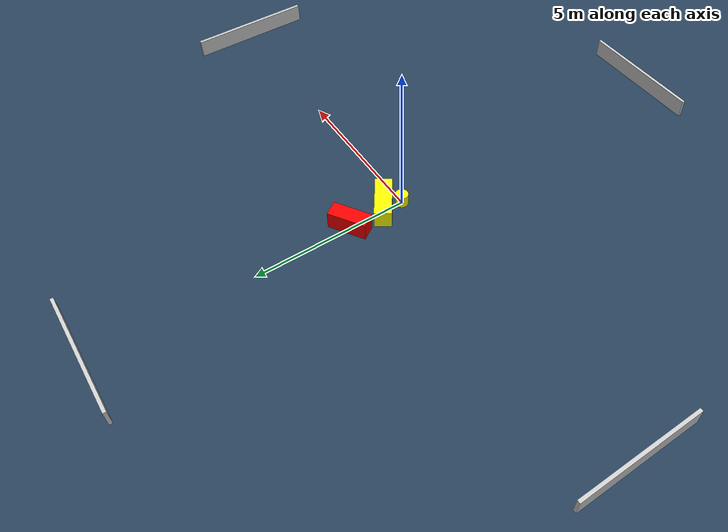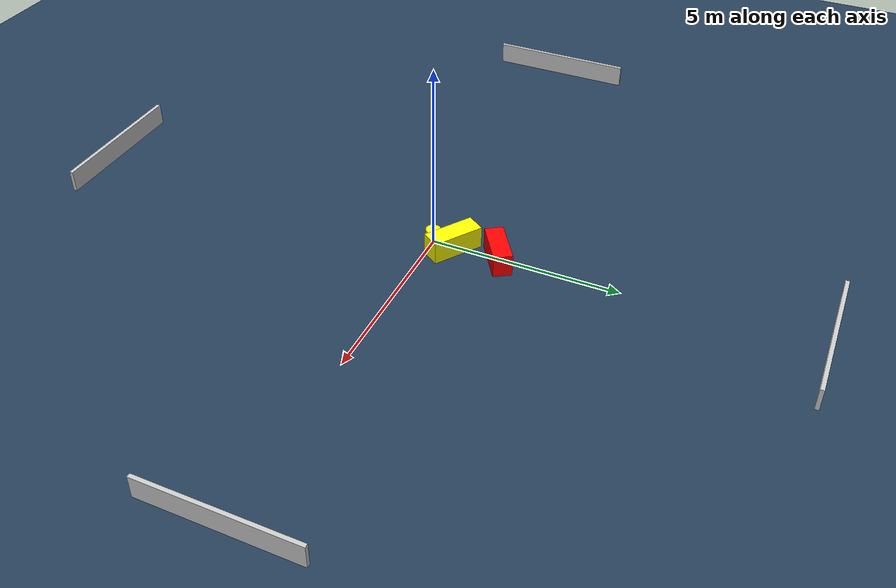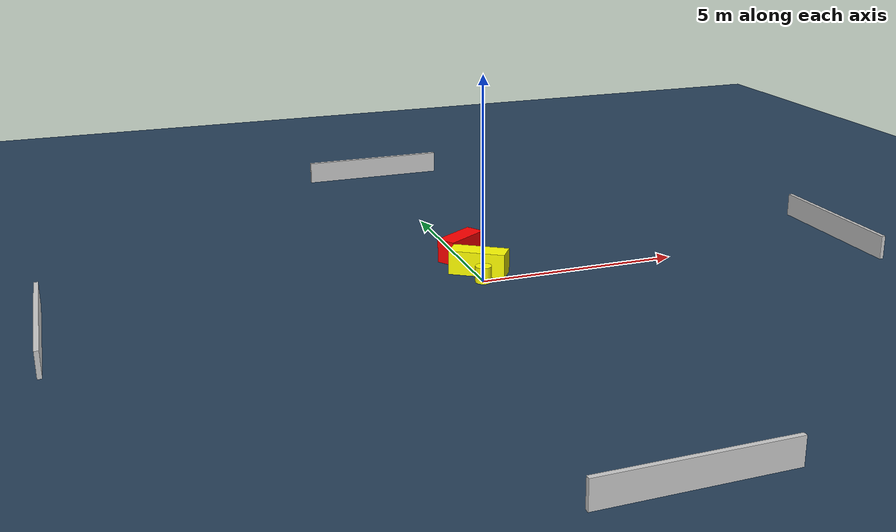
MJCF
<?xml version="1.0" ?>
<mujoco model="generated_environment">
  <option timestep="0.01" integrator="RK4" cone="elliptic"/>
  <default>
    <geom density="1"/>
  </default>
  <asset>
    <texture builtin="gradient" height="3072" name="skybox" rgb1="0.3 0.5 0.7" rgb2="0 0 0" type="skybox" width="512"/>
    <texture builtin="checker" height="300" name="groundplane" rgb1="0.2 0.3 0.4" rgb2="0.1 0.2 0.3" type="2d" width="300"/>
    <material name="groundplane" reflectance="0.2" texrepeat="5 5" texture="groundplane"/>
  </asset>
  <worldbody>
    <light dir="0 0 -1" directional="true" pos="0 0 1.5"/>
    <geom condim="3" friction="0.5 0.005 0.001" material="groundplane" name="floor" pos="0 0 0" size="0 0 0.05" type="plane"/>
    <body name="walls">
      <geom name="wall_1" condim="4" pos="-10.0 0.0 0.3" rgba="0.800000011920929 0.800000011920929 0.800000011920929 1.0" size="0.05 2.0 0.3" type="box"/>
      <geom name="wall_2" condim="4" pos="10.0 0.0 0.3" rgba="0.800000011920929 0.800000011920929 0.800000011920929 1.0" size="0.05 2.0 0.3" type="box"/>
      <geom name="wall_3" condim="4" pos="0.0 -10.0 0.3" rgba="0.800000011920929 0.800000011920929 0.800000011920929 1.0" size="2.0 0.05 0.3" type="box"/>
      <geom name="wall_4" condim="4" pos="0.0 10.0 0.3" rgba="0.800000011920929 0.800000011920929 0.800000011920929 1.0" size="2.0 0.05 0.3" type="box"/>
    </body>
    <body name="robot">
      <joint name="joint_x" type="slide" pos="0 0 0" axis="1 0 0"/>
      <joint name="joint_y" type="slide" pos="0 0 0" axis="0 1 0"/>
      <geom name="robot" type="cylinder" pos="0.0 0.0 0.2" size="0.2 0.2 0.0" mass="5.0" friction="1.0 0.005 0.0001" condim="4" rgba="1.0 1.0 0.0 1.0"/>
    </body>
    <body name="obstacle_1_movable">
      <geom name="obstacle_1_movable" condim="4" pos="0.10523322983845207 0.5985211949239517 0.3" euler="0 0 55.69511792836623" friction="0.0 0.005 0.001" rgba="1.0 1.0 0.0 1.0" size="0.265407051382797 0.6956149980287867 0.3" type="box" mass="0.1"/>
      <joint type="free"/>
    </body>
    <body name="obstacle_2_static">
      <geom name="obstacle_2_static" condim="4" pos="0.059387691365169026 1.8199814288679759 0.3" euler="0 0 122.79395002120499" friction="0.0 0.005 0.001" rgba="1.0 0.0 0.0 1.0" size="0.24712979786250608 0.6125129119756096 0.3" type="box"/>
    </body>
  </worldbody>
  <actuator>
    <motor name="actuator_x" joint="joint_x" gear="1" ctrlrange="-1 1"/>
    <motor name="actuator_y" joint="joint_y" gear="1" ctrlrange="-1 1"/>
  </actuator>
</mujoco>
